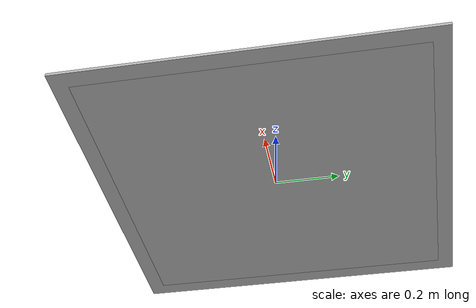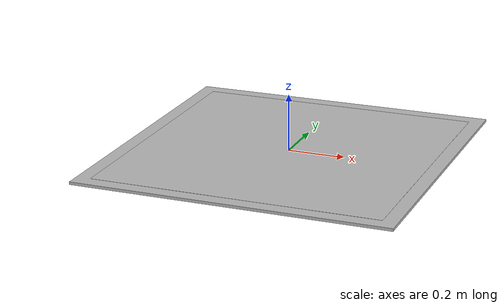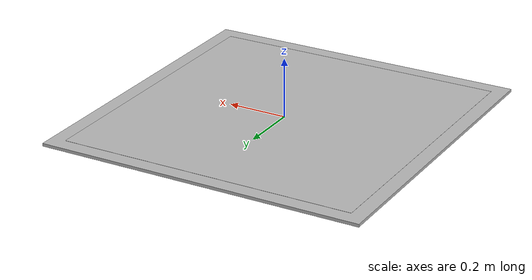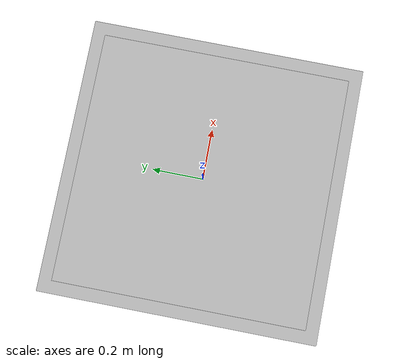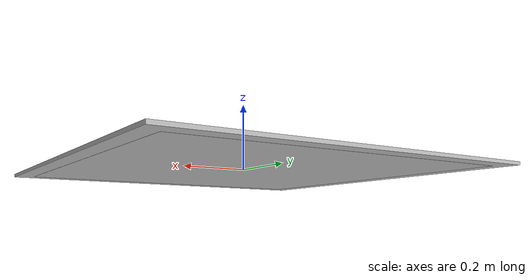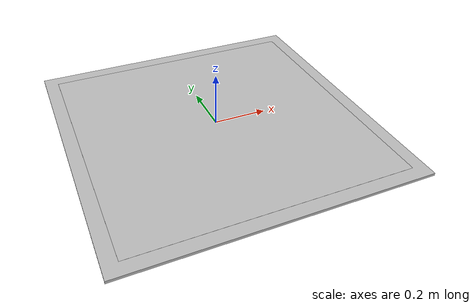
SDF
<sdf version='1.7'>
  <model name='my_aruco'>
    <link name='DICT_4X4_50_id0_link_0'>
      <inertial>
        <pose>0 0 0 0 -0 0</pose>
        <mass>1</mass>
        <inertia>
          <ixx>0.0741667</ixx>
          <ixy>0</ixy>
          <ixz>0</ixz>
          <iyy>0.0585417</iyy>
          <iyz>0</iyz>
          <izz>0.0260417</izz>
        </inertia>
      </inertial>
      <visual name='DICT_4X4_50_id0_link_0_visual'>
        <pose>0 0 0 0 -0 0</pose>
        <geometry>
          <box>
            <size>1.1 1.1 0.01</size>
          </box>
        </geometry>
      </visual>
      <visual name='DICT_4X4_50_id0_link_0_visual_1'>
        <pose>0 0 0 0 -0 0</pose>
        <geometry>
          <mesh>
            <scale>11.1111 11.1111 1.0</scale>
            <uri>model://aruco_id0/meshes/DICT_4X4_50/DICT_4X4_50_id0.dae</uri>
          </mesh>
        </geometry>
      </visual>
      <gravity>0</gravity>
    </link>
  </model>
</sdf>
